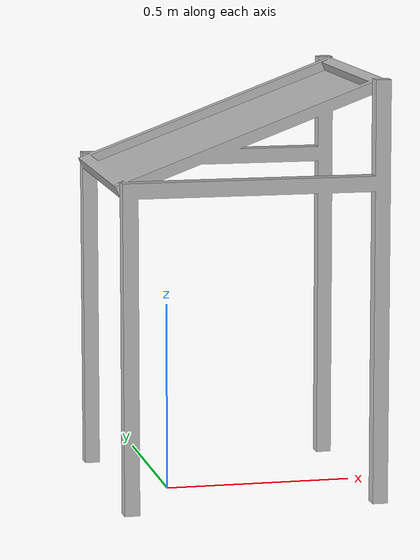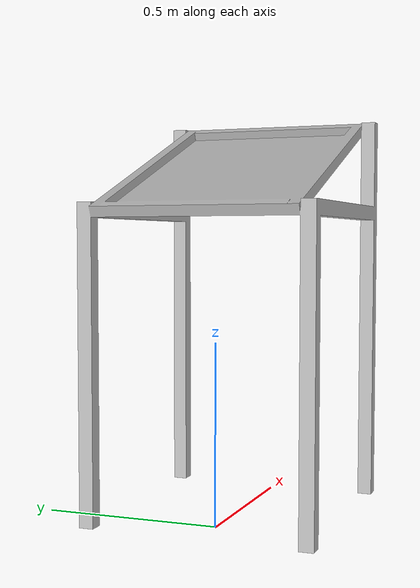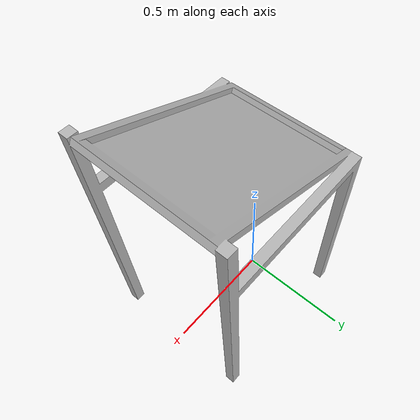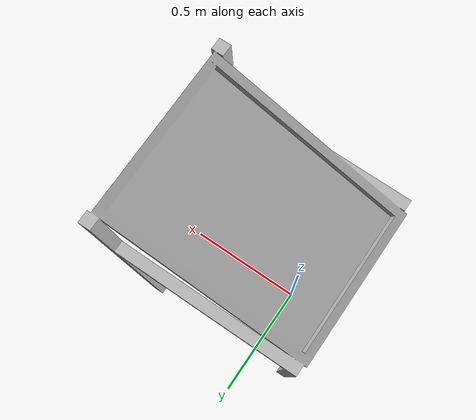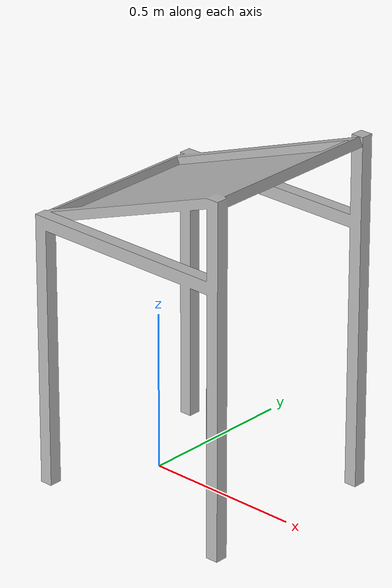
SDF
<?xml version="1.0"?>
<sdf version="1.4">

  <model name="RWAL_op40">

    <static>true</static>

    <link name="link">

      <pose>0 0 0 0 0 0</pose>

      <collision name="station_collision">
        <geometry>
          <mesh>
            <uri>model://RWAL_op40/meshes/RWAL_op40.dae</uri>
          </mesh>
        </geometry>
      </collision>

      <visual name="station_visual">
        <geometry>
          <mesh>
            <uri>model://RWAL_op40/meshes/RWAL_op40.dae</uri>
          </mesh>
        </geometry>

        <material>
          <script>
            <uri>model://RWAL_op40/materials/scripts</uri>
            <uri>model://RWAL_op40/materials/textures</uri>
          </script>
        </material>
      </visual>

    </link>

  </model>
</sdf>
